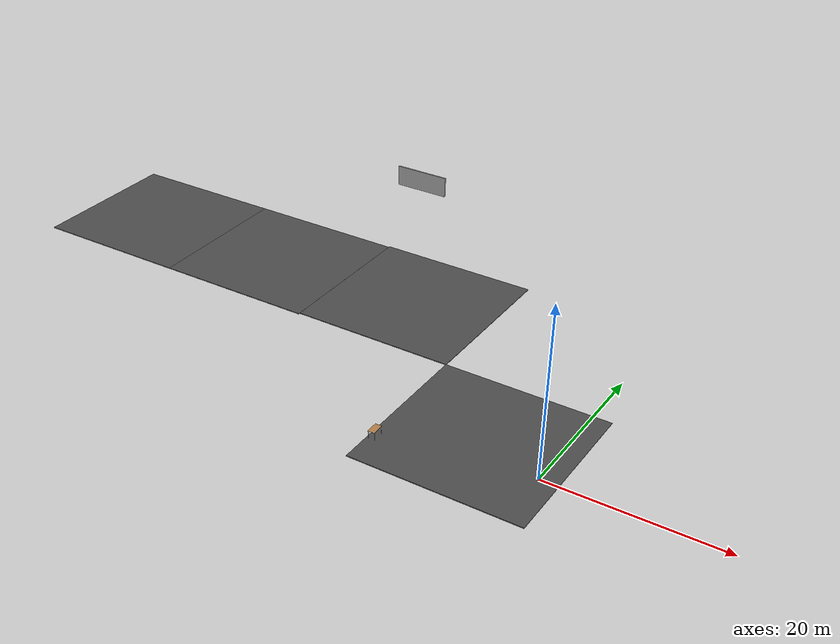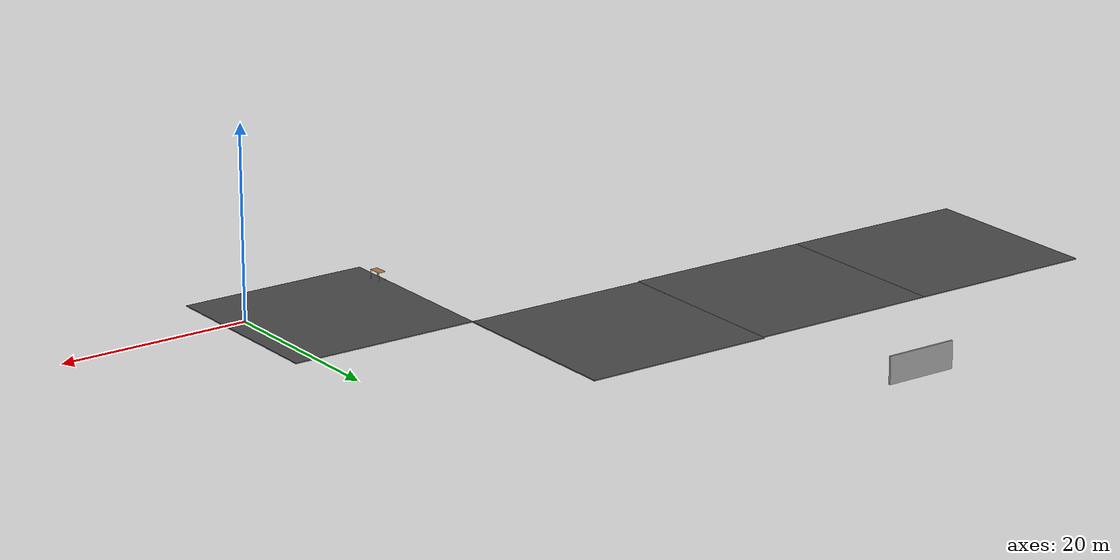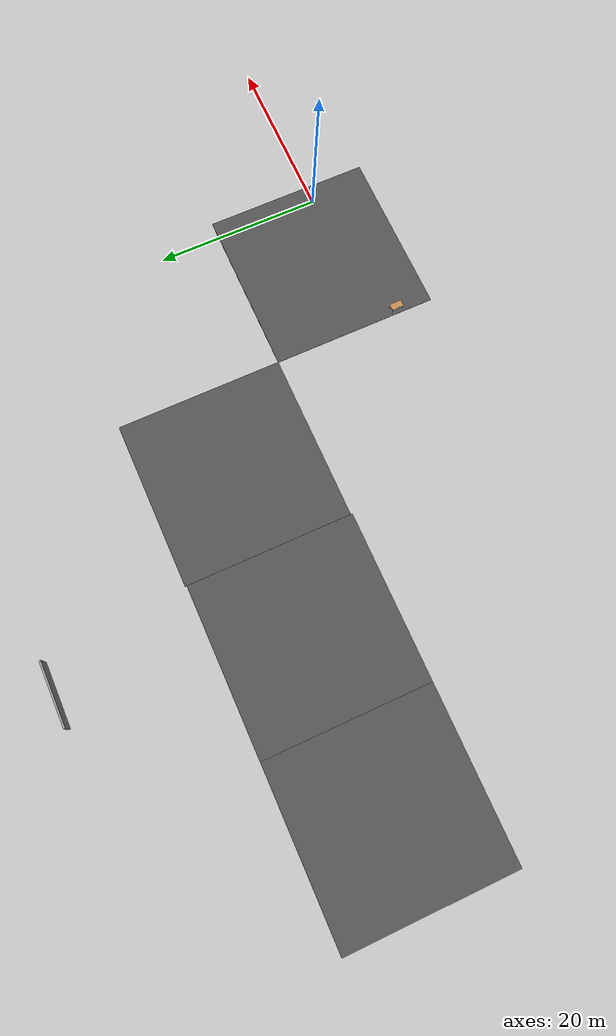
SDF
<sdf version="1.7">
 <world name="yolo_test_world">
  <model name="table">
   <static>1</static>
   <link name="link">
    <collision name="surface">
     <pose>0 0 1 0 -0 0</pose>
     <geometry><box><size>1.5 0.8 0.03</size></box></geometry>
     <surface><friction><ode><mu>0.6</mu><mu2>0.6</mu2></ode></friction></surface>
    </collision>
    <visual name="visual1">
     <pose>0 0 1 0 -0 0</pose>
     <geometry><box><size>1.5 0.8 0.03</size></box></geometry>
     <material>
      <script><uri>file://media/materials/scripts/gazebo.material</uri><name>Gazebo/Wood</name></script>
     </material>
    </visual>
    <collision name="front_left_leg">
     <pose>0.68 0.38 0.5 0 -0 0</pose>
     <geometry><cylinder><radius>0.02</radius><length>1</length></cylinder></geometry>
    </collision>
    <visual name="front_left_leg">
     <pose>0.68 0.38 0.5 0 -0 0</pose>
     <geometry><cylinder><radius>0.02</radius><length>1</length></cylinder></geometry>
     <material>
      <script><uri>file://media/materials/scripts/gazebo.material</uri><name>Gazebo/Grey</name></script>
     </material>
    </visual>
    <collision name="front_right_leg">
     <pose>0.68 -0.38 0.5 0 -0 0</pose>
     <geometry><cylinder><radius>0.02</radius><length>1</length></cylinder></geometry>
    </collision>
    <visual name="front_right_leg">
     <pose>0.68 -0.38 0.5 0 -0 0</pose>
     <geometry><cylinder><radius>0.02</radius><length>1</length></cylinder></geometry>
     <material>
      <script><uri>file://media/materials/scripts/gazebo.material</uri><name>Gazebo/Grey</name></script>
     </material>
    </visual>
    <collision name="back_right_leg">
     <pose>-0.68 -0.38 0.5 0 -0 0</pose>
     <geometry><cylinder><radius>0.02</radius><length>1</length></cylinder></geometry>
    </collision>
    <visual name="back_right_leg">
     <pose>-0.68 -0.38 0.5 0 -0 0</pose>
     <geometry><cylinder><radius>0.02</radius><length>1</length></cylinder></geometry>
     <material>
      <script><uri>file://media/materials/scripts/gazebo.material</uri><name>Gazebo/Grey</name></script>
     </material>
    </visual>
    <collision name="back_left_leg">
     <pose>-0.68 0.38 0.5 0 -0 0</pose>
     <geometry><cylinder><radius>0.02</radius><length>1</length></cylinder></geometry>
    </collision>
    <visual name="back_left_leg">
     <pose>-0.68 0.38 0.5 0 -0 0</pose>
     <geometry><cylinder><radius>0.02</radius><length>1</length></cylinder></geometry>
     <material>
      <script><uri>file://media/materials/scripts/gazebo.material</uri><name>Gazebo/Grey</name></script>
     </material>
    </visual>
   </link>
   <pose>-17.2099 -3.0253 0 0 -0 1.59866</pose>
  </model>
  <model name="grey_wall">
   <static>1</static>
   <link name="link">
    <pose>0 0 1.4 0 -0 0</pose>
    <collision name="collision"><geometry><box><size>7.5 0.2 2.8</size></box></geometry></collision>
    <visual name="visual">
     <cast_shadows>0</cast_shadows>
     <geometry><box><size>7.5 0.2 2.8</size></box></geometry>
     <material>
      <script>
       <uri>model://grey_wall/materials/scripts</uri>
       <uri>model://grey_wall/materials/textures</uri>
       <name>vrc/grey_wall</name>
      </script>
     </material>
    </visual>
   </link>
   <pose>-43.0369 49.3353 0 0 -0 0</pose>
  </model>
  <model name="asphalt_plane">
   <static>1</static>
   <link name="link">
    <collision name="collision"><geometry><box><size>20 20 0.1</size></box></geometry></collision>
    <visual name="visual">
     <cast_shadows>0</cast_shadows>
     <geometry><box><size>20 20 0.1</size></box></geometry>
     <material>
      <script>
       <uri>model://asphalt_plane/materials/scripts</uri>
       <uri>model://asphalt_plane/materials/textures</uri>
       <name>vrc/asphalt</name>
      </script>
     </material>
    </visual>
   </link>
   <pose>-7.83882 2.61958 0 0 -0 0</pose>
  </model>
  <model name="asphalt_plane_0_clone">
   <static>1</static>
   <link name="link">
    <collision name="collision"><geometry><box><size>20 20 0.1</size></box></geometry></collision>
    <visual name="visual">
     <cast_shadows>0</cast_shadows>
     <geometry><box><size>20 20 0.1</size></box></geometry>
     <material>
      <script>
       <uri>model://asphalt_plane/materials/scripts</uri>
       <uri>model://asphalt_plane/materials/textures</uri>
       <name>vrc/asphalt</name>
      </script>
     </material>
    </visual>
   </link>
   <pose>-27.8139 22.6278 0 0 -0 0</pose>
  </model>
  <model name="asphalt_plane_0_clone_0">
   <static>1</static>
   <link name="link">
    <collision name="collision"><geometry><box><size>20 20 0.1</size></box></geometry></collision>
    <visual name="visual">
     <cast_shadows>0</cast_shadows>
     <geometry><box><size>20 20 0.1</size></box></geometry>
     <material>
      <script>
       <uri>model://asphalt_plane/materials/scripts</uri>
       <uri>model://asphalt_plane/materials/textures</uri>
       <name>vrc/asphalt</name>
      </script>
     </material>
    </visual>
   </link>
   <pose>-47.8195 22.4307 0 0 -0 0</pose>
  </model>
  <model name="asphalt_plane_0_clone_1">
   <static>1</static>
   <link name="link">
    <collision name="collision"><geometry><box><size>20 20 0.1</size></box></geometry></collision>
    <visual name="visual">
     <cast_shadows>0</cast_shadows>
     <geometry><box><size>20 20 0.1</size></box></geometry>
     <material>
      <script>
       <uri>model://asphalt_plane/materials/scripts</uri>
       <uri>model://asphalt_plane/materials/textures</uri>
       <name>vrc/asphalt</name>
      </script>
     </material>
    </visual>
   </link>
   <pose>-67.8182 22.4213 0 0 -0 0</pose>
  </model>
 </world>
</sdf>
